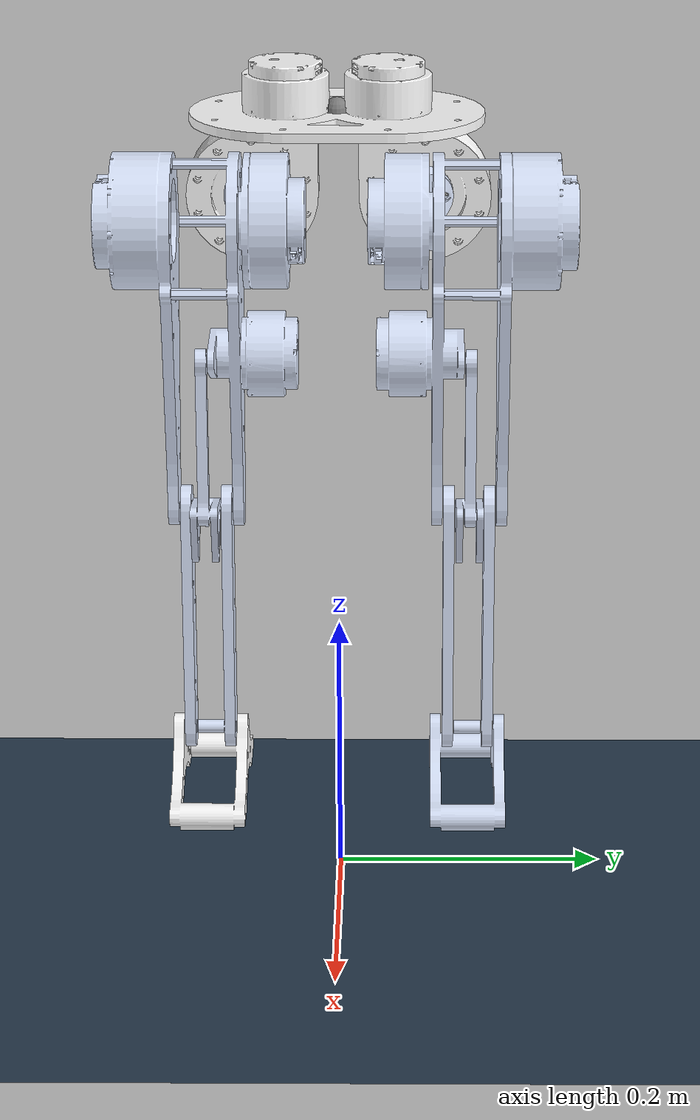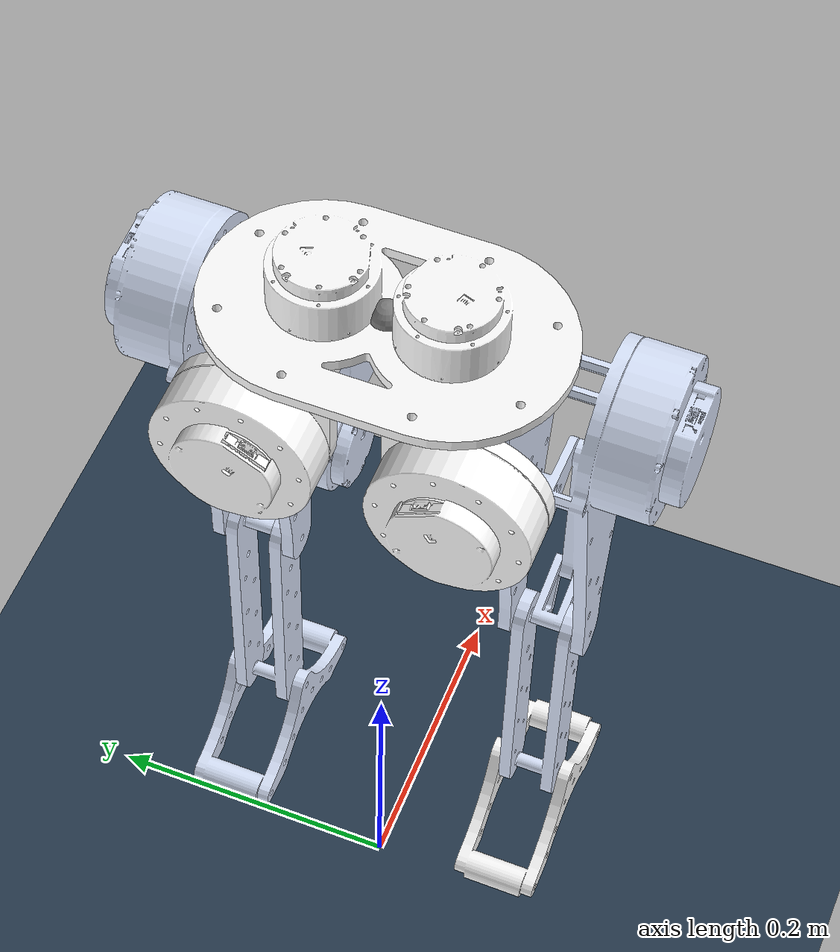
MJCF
<mujoco model="wrobot">
    <compiler angle="radian" autolimits="true" eulerseq="zyx"/>
        <option timestep='0.001' iterations='50' solver='PGS' gravity='0 0 -9.81'>
        <flag sensornoise="enable" frictionloss="enable"/>
        </option>
        <size njmax="500" nconmax="100" />

        <visual>
            <quality shadowsize='4096'/>
            <map znear='0.05'/>
        </visual>
        <default>
            <joint limited='true'/>
            <motor ctrllimited='true'/>
            <geom  condim='4' contype="1" conaffinity="15" solref='0.001 2' friction='0.9 0.2 0.2'/>
            <equality solref='0.001 2'/>
            <default class='leg_joint_param'>
                <joint  damping="0.01" frictionloss="0.01" armature="0.01"/>
            </default>
        </default>
    <asset>
        <mesh name="base_link" file="/home/wang/humanoid-gym/resources/robots/wrobot/meshes/base_link.STL" />
        <mesh name="left_leg_yaw_link" file="/home/wang/humanoid-gym/resources/robots/wrobot/meshes/left_leg_yaw_link.STL" />
        <mesh name="left_leg_roll_link" file="/home/wang/humanoid-gym/resources/robots/wrobot/meshes/left_leg_roll_link.STL" />
        <mesh name="left_leg_pitch_link" file="/home/wang/humanoid-gym/resources/robots/wrobot/meshes/left_leg_pitch_link.STL" />
        <mesh name="left_knee_link" file="/home/wang/humanoid-gym/resources/robots/wrobot/meshes/left_knee_link.STL" />
        <mesh name="left_ankle_link" file="/home/wang/humanoid-gym/resources/robots/wrobot/meshes/left_ankle_link.STL" />
        <mesh name="right_leg_yaw_link" file="/home/wang/humanoid-gym/resources/robots/wrobot/meshes/right_leg_yaw_link.STL" />
        <mesh name="right_leg_roll_link" file="/home/wang/humanoid-gym/resources/robots/wrobot/meshes/right_leg_roll_link.STL" />
        <mesh name="right_leg_pitch_link" file="/home/wang/humanoid-gym/resources/robots/wrobot/meshes/right_leg_pitch_link.STL" />
        <mesh name="right_knee_link" file="/home/wang/humanoid-gym/resources/robots/wrobot/meshes/right_knee_link.STL" />
        <mesh name="right_ankle_link" file="/home/wang/humanoid-gym/resources/robots/wrobot/meshes/right_ankle_link.STL" />
        <material name="matplane" reflectance="0.3" texture="texplane" texrepeat="1 1" texuniform="true"/>
        <material name="matgeom" texture="texgeom" texuniform="true" rgba="0.8 0.6 .4 1"/>
        <texture name="texplane" type="2d" builtin="checker" rgb1=".2 .3 .4" rgb2=".1 0.15 0.2" width="512" height="512" mark="cross" markrgb=".8 .8 .8"/>
        <texture name="texgeom" type="cube" builtin="flat" mark="cross" width="127" height="1278" rgb1="0.8 0.6 0.4" rgb2="0.8 0.6 0.4" markrgb="1 1 1" random="0.01"/>
        <texture type="skybox" builtin="gradient" rgb1="1 1 1" rgb2=".6 .8 1" width="256" height="256"/>
    </asset>
    <worldbody>
        <light directional="true" diffuse=".4 .4 .4" specular="0.1 0.1 0.1" pos="0 0 5.0" dir="0 0 -1" castshadow="false"/>
        <light directional="true" diffuse=".6 .6 .6" specular="0.2 0.2 0.2" pos="0 0 4" dir="0 0 -1"/>
        <geom name="ground" type="plane" size="0 0 1" pos="0.001 0 0" quat="1 0 0 0" material="matplane" condim="1" conaffinity='15'/>
        <body name="base_link" pos="0 0 0.6">
            <inertial pos="-1.45545e-06 -3.3404e-07 0.00634866" quat="0.5 0.5 -0.5 0.5" mass="0.986598" diaginertia="0.0022963 0.0019751 0.0005584" />
            <joint name="floating_base_joint" type="free" />
            <site name='imu' size='0.01' pos='0.0 0 0.0' quat='1 0 0 0'/>
            <geom type="mesh" contype="1" conaffinity="1" group="1" rgba="1 1 1 1" mesh="base_link" />
            <body name="left_leg_yaw_link" pos="0 0.037 -0.0049">
                <inertial pos="-0.0443093 0.0202625 -0.0546231" quat="0.959054 0.223882 0.171257 0.0276412" mass="0.791631" diaginertia="0.00131517 0.00105007 0.000621256" />
                <joint name="left_leg_yaw_joint" pos="0 0 0" axis="0 0 1" limited="true" range="-0.3 0.16" class="leg_joint_param" />
                <geom type="mesh" contype="0" conaffinity="0" group="1" rgba="1 1 1 1" mesh="left_leg_yaw_link" />
                <body name="left_leg_roll_link" pos="-0.0425 0.027 -0.068">
                    <inertial pos="0.064518 -0.00966371 -6.81067e-05" quat="0.526637 0.526243 0.473495 0.470663" mass="0.719438" diaginertia="0.00105807 0.000748198 0.000475229" />
                    <joint name="left_leg_roll_joint" pos="0 0 0" axis="1 0 0" limited="true" range="-0.14 0.2" class="leg_joint_param" />
                    <geom type="mesh" contype="0" conaffinity="0" group="1" rgba="0.866667 0.909804 1 1" mesh="left_leg_roll_link" />
                    <body name="left_leg_pitch_link" pos="0.07722 0.006337 0">
                        <inertial pos="0.0014832 0.0326063 -0.0625656" quat="0.981326 -0.186569 -0.0209429 -0.0418719" mass="1.99058" diaginertia="0.011665 0.0108005 0.00286355" />
                        <joint name="left_leg_pitch_joint" pos="0 0 0" axis="0 1 0" limited="true" range="-1.75 0.17" class="leg_joint_param" />
                        <geom type="mesh" contype="0" conaffinity="0" group="1" rgba="0.866667 0.909804 1 1" mesh="left_leg_pitch_link" />
                        <body name="left_knee_link" pos="0 0.026996 -0.218">
                            <inertial pos="0 0 -0.0902889" quat="1 0 0.000114732 0" mass="0.263526" diaginertia="0.0009519 0.0009112 8.03e-05" />
                            <joint name="left_knee_joint" pos="0 0 0" axis="0 1 0" limited="true" range="0 2.2" class="leg_joint_param" />
                            <geom type="mesh" contype="0" conaffinity="0" group="1" rgba="0.866667 0.909804 1 1" mesh="left_knee_link" />
                            <body name="left_ankle_link" pos="0 0 -0.18">
                                <inertial pos="-9.93401e-06 0 -0.031556" quat="0 0.707107 0 0.707107" mass="0.160037" diaginertia="0.000341 0.0002932 0.0001194" />
                                <joint name="left_ankle_joint" pos="0 0 0" axis="0 1 0" limited="true" range="-1.3 1.3" class="leg_joint_param" />
                                <geom type="mesh" contype="0" conaffinity="0" group="1" rgba="0.866667 0.909804 1 1" mesh="left_ankle_link" />
                                <geom type="mesh" rgba="0.866667 0.909804 1 1" mesh="left_ankle_link" />
                            </body>
                        </body>
                    </body>
                </body>
            </body>
            <body name="right_leg_yaw_link" pos="0 -0.037 -0.0049">
                <inertial pos="-0.0440137 -0.0201218 -0.0543663" quat="0.9589 -0.223225 0.172989 -0.0275017" mass="0.800661" diaginertia="0.00134068 0.00107417 0.000629151" />
                <joint name="right_leg_yaw_joint" pos="0 0 0" axis="0 0 1" limited="true" range="-0.16 0.3" class="leg_joint_param" />
                <geom type="mesh" contype="0" conaffinity="0" group="1" rgba="1 1 1 1" mesh="right_leg_yaw_link" />
                <body name="right_leg_roll_link" pos="-0.0425 -0.027 -0.068">
                    <inertial pos="0.064509 0.0096637 -7.6043e-05" quat="0.47059 0.473763 0.526191 0.526514" mass="0.719438" diaginertia="0.00105793 0.000748398 0.000474974" />
                    <joint name="right_leg_roll_joint" pos="0 0 0" axis="1 0 0" limited="true" range="-0.2 0.14" class="leg_joint_param" />
                    <geom type="mesh" contype="0" conaffinity="0" group="1" rgba="0.86667 0.9098 1 1" mesh="right_leg_roll_link" />
                    <body name="right_leg_pitch_link" pos="0.07722 -0.006333 0">
                        <inertial pos="0.00141749 -0.0326081 -0.0625699" quat="0.981461 0.186608 -0.0209282 0.0383989" mass="1.99058" diaginertia="0.0116638 0.0108004 0.00286326" />
                        <joint name="right_leg_pitch_joint" pos="0 0 0" axis="0 1 0" limited="true" range="-1.75 0.17" class="leg_joint_param" />
                        <geom type="mesh" contype="0" conaffinity="0" group="1" rgba="0.866667 0.909804 1 1" mesh="right_leg_pitch_link" />
                        <body name="right_knee_link" pos="0 -0.027 -0.218">
                            <inertial pos="0 0 -0.0902889" quat="1 0 -0.000114732 0" mass="0.263526" diaginertia="0.0009519 0.0009112 8.03e-05" />
                            <joint name="right_knee_joint" pos="0 0 0" axis="0 1 0" limited="true" range="0 2.2" class="leg_joint_param" />
                            <geom type="mesh" contype="0" conaffinity="0" group="1" rgba="0.866667 0.909804 1 1" mesh="right_knee_link" />
                            <body name="right_ankle_link" pos="0 0 -0.18">
                                <inertial pos="-9.93401e-06 0 -0.031556" quat="0 0.707107 0 0.707107" mass="0.160037" diaginertia="0.000341 0.0002932 0.0001194" />
                                <joint name="right_ankle_joint" pos="0 0 0" axis="0 1 0" limited="true" range="-1.3 1.3" class="leg_joint_param" />
                                <geom type="mesh" contype="0" conaffinity="0" group="1" rgba="1 1 1 1" mesh="right_ankle_link" />
                                <geom type="mesh" rgba="1 1 1 1" mesh="right_ankle_link" />
                            </body>
                        </body>
                    </body>
                </body>
            </body>
        </body>
    </worldbody>
    <actuator>
    <motor name="left_leg_yaw_joint" joint="left_leg_yaw_joint" gear="1" ctrllimited="true" ctrlrange="-70 70"/>
    <motor name="left_leg_roll_joint" joint="left_leg_roll_joint" gear="1" ctrllimited="true" ctrlrange="-70 70"/>
    <motor name="left_leg_pitch_joint" joint="left_leg_pitch_joint" gear="1" ctrllimited="true" ctrlrange="-200 200"/>
    <motor name="left_knee_joint" joint="left_knee_joint" gear="1" ctrllimited="true" ctrlrange="-200 200"/>
    <motor name="left_ankle_joint" joint="left_ankle_joint" gear="1" ctrllimited="true" ctrlrange="-70 70"/>

    <motor name="right_leg_yaw_joint" joint="right_leg_yaw_joint" gear="1" ctrllimited="true" ctrlrange="-70 70"/>
    <motor name="right_leg_roll_joint" joint="right_leg_roll_joint" gear="1" ctrllimited="true" ctrlrange="-70 70"/>
    <motor name="right_leg_pitch_joint" joint="right_leg_pitch_joint" gear="1" ctrllimited="true" ctrlrange="-200 200"/>
    <motor name="right_knee_joint" joint="right_knee_joint" gear="1" ctrllimited="true" ctrlrange="-200 200"/>
    <motor name="right_ankle_joint" joint="right_ankle_joint" gear="1" ctrllimited="true" ctrlrange="-70 70"/>
    </actuator>
    <sensor>

      <framequat     name='orientation' objtype='site' noise='0.001' objname='imu'/>
        <framepos     name='position' objtype='site' noise='0.001' objname='imu'/>
        <gyro          name='angular-velocity'    site='imu' noise='0.005' cutoff='34.9'/>
        <velocimeter   name='linear-velocity'     site='imu' noise='0.001' cutoff='30'/>
        <accelerometer name='linear-acceleration' site='imu' noise='0.005' cutoff='157'/>
        <magnetometer  name='magnetometer'        site='imu'/>

    </sensor>
</mujoco>
